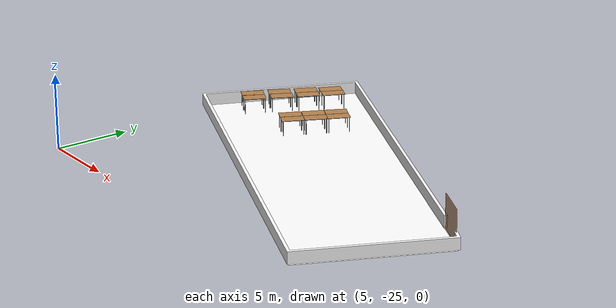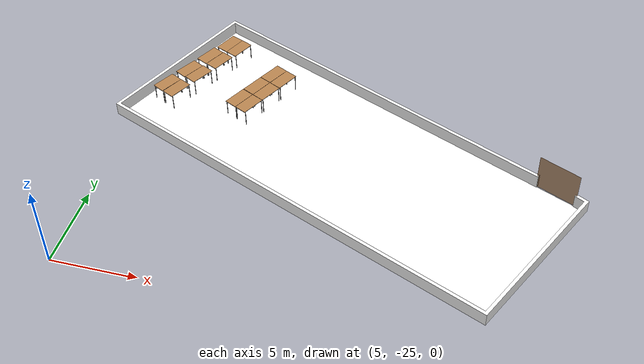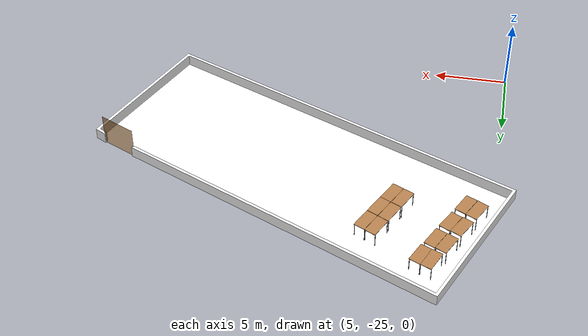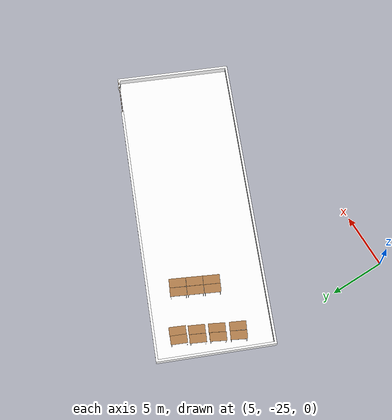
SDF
<sdf version="1.7">
 <world name="sim_world">
  <physics name="10ms" type="ode">
   <max_step_size>0.01</max_step_size>
   <real_time_factor>1.0</real_time_factor>
  </physics>
  <plugin filename="gz-sim-physics-system" name="gz::sim::systems::Physics"/>
  <plugin filename="gz-sim-user-commands-system" name="gz::sim::systems::UserCommands"/>
  <plugin filename="gz-sim-scene-broadcaster-system" name="gz::sim::systems::SceneBroadcaster"/>
  <plugin filename="gz-sim-sensors-system" name="gz::sim::systems::Sensors">
   <render_engine>ogre2</render_engine>
  </plugin>
  <plugin filename="gz-sim-imu-system" name="gz::sim::systems::Imu"/>
  <plugin filename="libdoor.so" name="door"/>
  <plugin filename="liblift.so" name="lift"/>
  <scene><ambient>1 1 1</ambient><background>0.8 0.8 0.8</background><grid>false</grid></scene>
  <light type="directional" name="sun">
   <pose>0 0 10 0 0 0</pose>
   <diffuse>1 1 1 1</diffuse>
   <specular>0.2 0.2 0.2 1</specular>
   <attenuation>
    <range>1000</range>
    <constant>0.09</constant>
    <linear>0.001</linear>
    <quadratic>0.001</quadratic>
   </attenuation>
   <direction>-0.5 0.1 -0.9</direction>
  </light>
  <include>
   <name>OpenRobotics/Table</name>
   <uri>https://fuel.gazebosim.org/1.0/OpenRobotics/models/Table</uri>
   <pose>12.359423258034923 -8.285482072782232 0.0 0 0 1.0974</pose>
   <static>True</static>
  </include>
  <include>
   <name>OpenRobotics/Table_2</name>
   <uri>https://fuel.gazebosim.org/1.0/OpenRobotics/models/Table</uri>
   <pose>11.679224729773928 -9.640429141096309 0.0 0 0 1.1071</pose>
   <static>True</static>
  </include>
  <include>
   <name>OpenRobotics/Table_3</name>
   <uri>https://fuel.gazebosim.org/1.0/OpenRobotics/models/Table</uri>
   <pose>10.992326216009626 -10.99942620064746 0.0 0 0 1.1071</pose>
   <static>True</static>
  </include>
  <include>
   <name>OpenRobotics/Table_4</name>
   <uri>https://fuel.gazebosim.org/1.0/OpenRobotics/models/Table</uri>
   <pose>13.08277169293288 -8.6525312786014 0.0 0 0 -2.0344</pose>
   <static>True</static>
  </include>
  <include>
   <name>OpenRobotics/Table_5</name>
   <uri>https://fuel.gazebosim.org/1.0/OpenRobotics/models/Table</uri>
   <pose>12.405273158829933 -10.00347835557022 0.0 0 0 -2.0395</pose>
   <static>True</static>
  </include>
  <include>
   <name>OpenRobotics/Table_6</name>
   <uri>https://fuel.gazebosim.org/1.0/OpenRobotics/models/Table</uri>
   <pose>11.721074639223682 -11.351675438489174 0.0 0 0 -2.0344</pose>
   <static>True</static>
  </include>
  <include>
   <name>OpenRobotics/Table_7</name>
   <uri>https://fuel.gazebosim.org/1.0/OpenRobotics/models/Table</uri>
   <pose>8.69418118848389 -6.0228869683374695 0.0 0 0 1.1479</pose>
   <static>True</static>
  </include>
  <include>
   <name>OpenRobotics/Table_8</name>
   <uri>https://fuel.gazebosim.org/1.0/OpenRobotics/models/Table</uri>
   <pose>7.874032963030707 -7.493433786529481 0.0 0 0 1.1071</pose>
   <static>True</static>
  </include>
  <include>
   <name>OpenRobotics/Table_9</name>
   <uri>https://fuel.gazebosim.org/1.0/OpenRobotics/models/Table</uri>
   <pose>7.0539347374693415 -9.07708036000864 0.0 0 0 1.0698</pose>
   <static>True</static>
  </include>
  <include>
   <name>OpenRobotics/Table_10</name>
   <uri>https://fuel.gazebosim.org/1.0/OpenRobotics/models/Table</uri>
   <pose>6.205536573140279 -10.689026872255496 0.0 0 0 -2.0647</pose>
   <static>True</static>
  </include>
  <include>
   <name>OpenRobotics/Table_11</name>
   <uri>https://fuel.gazebosim.org/1.0/OpenRobotics/models/Table</uri>
   <pose>9.401129658866294 -6.333986295214852 0.0 0 0 -2.0074</pose>
   <static>True</static>
  </include>
  <include>
   <name>OpenRobotics/Table_12</name>
   <uri>https://fuel.gazebosim.org/1.0/OpenRobotics/models/Table</uri>
   <pose>8.609331372072623 -7.832783052282743 0.0 0 0 1.1071</pose>
   <static>True</static>
  </include>
  <include>
   <name>OpenRobotics/Table_13</name>
   <uri>https://fuel.gazebosim.org/1.0/OpenRobotics/models/Table</uri>
   <pose>7.789233146511254 -9.416429625761904 0.0 0 0 -2.0647</pose>
   <static>True</static>
  </include>
  <include>
   <name>OpenRobotics/Table_14</name>
   <uri>https://fuel.gazebosim.org/1.0/OpenRobotics/models/Table</uri>
   <pose>6.940834982182192 -11.056626076884637 0.0 0 0 -2.0344</pose>
   <static>True</static>
  </include>
  <model name="null">
   <pose>30.56398386900245 -13.55377067383692 0.0 0 0 2.7049748912126312</pose>
   <link name="right">
    <pose>0 0 1.11 0 0 0</pose>
    <visual name="right_visual">
     <geometry><box><size>2.561428044157478 0.03 2.2</size></box></geometry>
     <material>
      <ambient>0.5 0.25 0 0.6</ambient>
      <diffuse>0.5 0.25 0 0.6</diffuse>
      <pbr><metal><metalness>0.0</metalness></metal></pbr>
     </material>
    </visual>
    <collision name="right_collision">
     <geometry><box><size>2.561428044157478 0.03 2.2</size></box></geometry>
     <surface><contact><collide_bitmask>0x02</collide_bitmask></contact></surface>
    </collision>
    <inertial>
     <mass>50.0</mass>
     <inertia><ixx>20.17041666666667</ixx><iyy>47.503806772485014</iyy><izz>27.340890105818342</izz></inertia>
    </inertial>
   </link>
   <joint name="right_joint" type="revolute">
    <parent>world</parent>
    <child>right</child>
    <axis><xyz>0 0 -1</xyz><limit><lower>0</lower><upper>1.57</upper></limit></axis>
    <pose>1.2857140220787389 0 0 0 0 0</pose>
   </joint>
   <plugin name="register_component" filename="libregister_component.so">
    <component name="Door">
     <v_max_door>0.5</v_max_door>
     <a_max_door>0.3</a_max_door>
     <a_nom_door>0.15</a_nom_door>
     <dx_min_door>0.01</dx_min_door>
     <f_max_door>500.0</f_max_door>
     <ros_interface>true</ros_interface>
     <door name="null" type="SwingDoor" left_joint_name="empty_joint" right_joint_name="right_joint"/>
    </component>
   </plugin>
  </model>
  <include><name>tb3_world_tb3_world</name><uri>model://tb3_world_tb3_world</uri></include>
  <plugin name="register_component" filename="libregister_component.so">
   <component name="Chargers">
    <rmf_charger name="wp1_charging" x="15.276116947212877" y="-8.801480956320416" z="0.0"/>
   </component>
  </plugin>
 </world>
</sdf>

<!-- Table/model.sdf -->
<sdf version="1.5">
    <model name="Table">
        <static>true</static>
        <link name="link">
            <collision name="surface">
                <pose>0 0 1.0 0 0 0</pose>
                <geometry>
                    <box>
                        <size>1.5 0.8 0.03</size>
                    </box>
                </geometry>
                <surface>
                    <friction>
                        <ode>
                            <mu>0.6</mu>
                            <mu2>0.6</mu2>
                        </ode>
                    </friction>
                </surface>
            </collision>
            <visual name="visual1">
                <pose>0 0 1.0 0 0 0</pose>
                <geometry>
                    <box>
                        <size>1.5 0.8 0.03</size>
                    </box>
                </geometry>
                <material>
                    <diffuse>1.0 1.0 1.0</diffuse>
                    <script>
                        <uri>file://media/materials/scripts/gazebo.material</uri>
                        <name>Gazebo/Wood</name>
                    </script>
                    <!-- PBR for Gazebo Sim; material scripts for Gazebo Classic. -->
                    <pbr>
                        <metal>
                            <albedo_map>https://fuel.gazebosim.org/1.0/openrobotics/models/table/4/files/Table_Diffuse.jpg</albedo_map>
                        </metal>
                    </pbr>
                </material>
            </visual>
            <collision name="front_left_leg">
                <pose>0.68 0.38 0.5 0 0 0</pose>
                <geometry>
                    <cylinder>
                        <radius>0.02</radius>
                        <length>1.0</length>
                    </cylinder>
                </geometry>
            </collision>
            <visual name="front_left_leg">
                <pose>0.68 0.38 0.5 0 0 0</pose>
                <geometry>
                    <cylinder>
                        <radius>0.02</radius>
                        <length>1.0</length>
                    </cylinder>
                </geometry>
                <material>
                    <diffuse>0.5 0.5 0.5</diffuse>
                    <script>
                        <uri>file://media/materials/scripts/gazebo.material</uri>
                        <name>Gazebo/Grey</name>
                    </script>
                </material>
            </visual>
            <collision name="front_right_leg">
                <pose>0.68 -0.38 0.5 0 0 0</pose>
                <geometry>
                    <cylinder>
                        <radius>0.02</radius>
                        <length>1.0</length>
                    </cylinder>
                </geometry>
            </collision>
            <visual name="front_right_leg">
                <pose>0.68 -0.38 0.5 0 0 0</pose>
                <geometry>
                    <cylinder>
                        <radius>0.02</radius>
                        <length>1.0</length>
                    </cylinder>
                </geometry>
                <material>
                    <diffuse>0.5 0.5 0.5</diffuse>
                    <script>
                        <uri>file://media/materials/scripts/gazebo.material</uri>
                        <name>Gazebo/Grey</name>
                    </script>
                </material>
            </visual>
            <collision name="back_right_leg">
                <pose>-0.68 -0.38 0.5 0 0 0</pose>
                <geometry>
                    <cylinder>
                        <radius>0.02</radius>
                        <length>1.0</length>
                    </cylinder>
                </geometry>
            </collision>
            <visual name="back_right_leg">
                <pose>-0.68 -0.38 0.5 0 0 0</pose>
                <geometry>
                    <cylinder>
                        <radius>0.02</radius>
                        <length>1.0</length>
                    </cylinder>
                </geometry>
                <material>
                    <diffuse>0.5 0.5 0.5</diffuse>
                    <script>
                        <uri>file://media/materials/scripts/gazebo.material</uri>
                        <name>Gazebo/Grey</name>
                    </script>
                </material>
            </visual>
            <collision name="back_left_leg">
                <pose>-0.68 0.38 0.5 0 0 0</pose>
                <geometry>
                    <cylinder>
                        <radius>0.02</radius>
                        <length>1.0</length>
                    </cylinder>
                </geometry>
            </collision>
            <visual name="back_left_leg">
                <pose>-0.68 0.38 0.5 0 0 0</pose>
                <geometry>
                    <cylinder>
                        <radius>0.02</radius>
                        <length>1.0</length>
                    </cylinder>
                </geometry>
                <material>
                    <diffuse>0.5 0.5 0.5</diffuse>
                    <script>
                        <uri>file://media/materials/scripts/gazebo.material</uri>
                        <name>Gazebo/Grey</name>
                    </script>
                </material>
            </visual>
        </link>
    </model>
</sdf>

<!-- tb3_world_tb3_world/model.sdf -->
<sdf version="1.7">
  <model name="tb3_world_tb3_world">
    <static>true</static>
    <link name="floor_1">
      <visual name="visual">
        <geometry>
          <mesh>
            <uri>model://tb3_world_tb3_world/meshes/floor_1.obj</uri>
          </mesh>
        </geometry>
        <material>
          <diffuse>1.0 1.0 1.0</diffuse>
          <specular>0.1 0.1 0.1</specular>
          <pbr>
            <metal>
              <metalness>0.0</metalness>
              <albedo_map>model://tb3_world_tb3_world/meshes/blue_linoleum.png</albedo_map>
            </metal>
          </pbr>
          <script>
            <uri>model://tb3_world_tb3_world/meshes/</uri>
            <name>floor_1_Diffuse</name>
          </script>
        </material>
      </visual>
      <collision name="collision">
        <geometry>
          <mesh>
            <uri>model://tb3_world_tb3_world/meshes/floor_1.obj</uri>
          </mesh>
        </geometry>
        <surface>
          <contact>
            <collide_bitmask>0x01</collide_bitmask>
          </contact>
        </surface>
      </collision>
    </link>
    <link name="wall_1">
      <visual name="wall_1">
        <geometry>
          <mesh>
            <uri>model://tb3_world_tb3_world/meshes/wall_1.obj</uri>
          </mesh>
        </geometry>
        <transparency>0.0</transparency>
        <material>
          <diffuse>1.0 1.0 1.0</diffuse>
          <specular>0.1 0.1 0.1</specular>
          <pbr>
            <metal>
              <metalness>0.0</metalness>
              <albedo_map>model://tb3_world_tb3_world/meshes/default.png</albedo_map>
            </metal>
          </pbr>
          <script>
            <uri>model://tb3_world_tb3_world/meshes/</uri>
            <name>wall_1_Diffuse</name>
          </script>
        </material>
      </visual>
      <collision name="collision">
        <geometry>
          <mesh>
            <uri>model://tb3_world_tb3_world/meshes/wall_1.obj</uri>
          </mesh>
        </geometry>
        <surface>
          <contact>
            <collide_bitmask>0x01</collide_bitmask>
          </contact>
        </surface>
      </collision>
      <pose>3.804505035188943 -23.532212343860166 0 0 0 0</pose>
    </link>
  </model>
</sdf>
